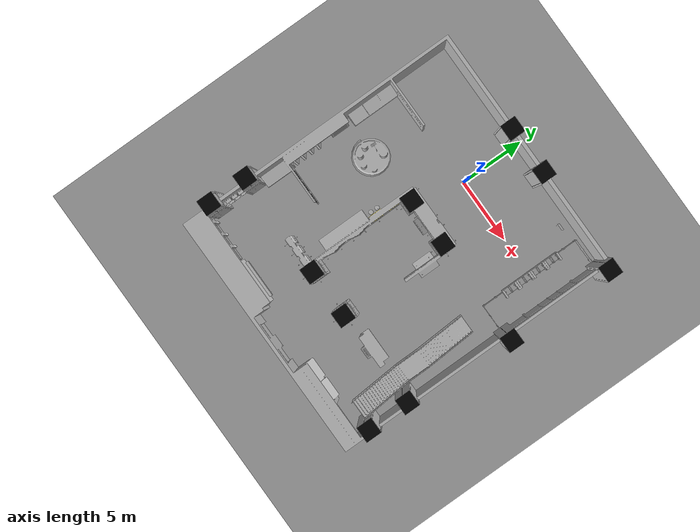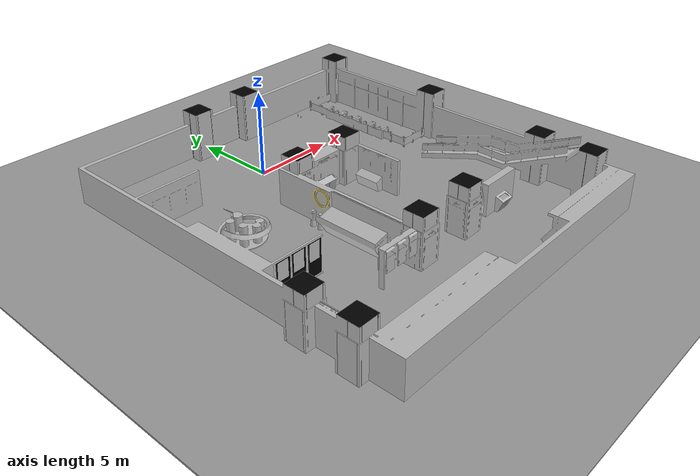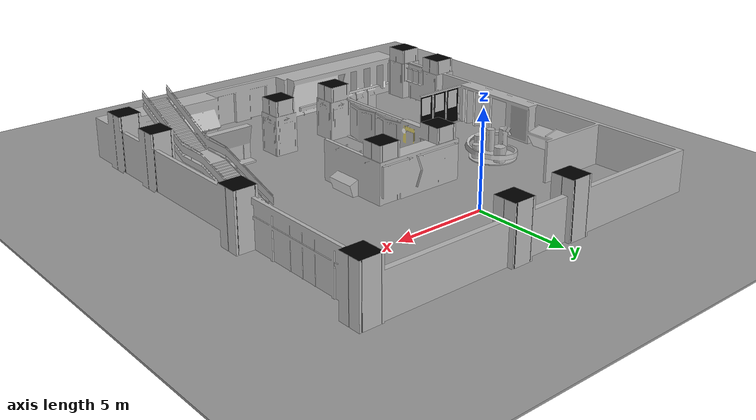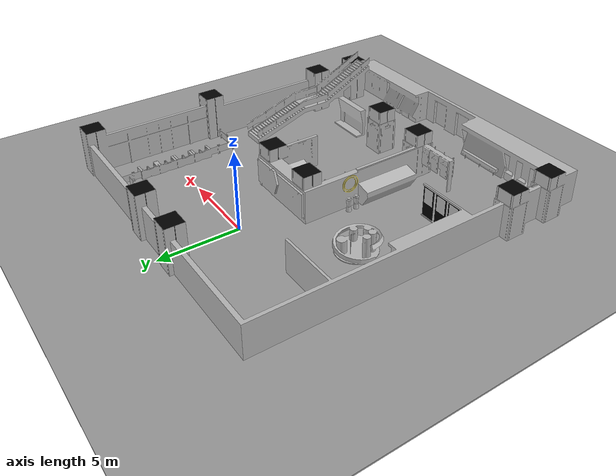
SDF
<sdf version="1.7">
 <world name="default">
  <light name="sun" type="directional">
   <pose>0 0 10 0 -0 0</pose>
   <diffuse>0.8 0.8 0.8 1</diffuse>
   <specular>0.2 0.2 0.2 1</specular>
   <attenuation>
    <range>1000</range>
    <constant>0.9</constant>
    <linear>0.01</linear>
    <quadratic>0.001</quadratic>
   </attenuation>
   <direction>-0.5 0.1 -0.9</direction>
   <spot><inner_angle>0</inner_angle><outer_angle>0</outer_angle><falloff>0</falloff></spot>
  </light>
  <model name="ground_plane">
   <static>1</static>
   <link name="link">
    <collision name="collision">
     <geometry><plane><normal>0 0 1</normal><size>100 100</size></plane></geometry>
     <surface>
      <contact><collide_bitmask>65535</collide_bitmask></contact>
      <friction><ode><mu>100</mu><mu2>50</mu2></ode></friction>
     </surface>
    </collision>
    <visual name="visual">
     <cast_shadows>0</cast_shadows>
     <geometry><plane><normal>0 0 1</normal><size>100 100</size></plane></geometry>
     <material>
      <script><uri>file://media/materials/scripts/gazebo.material</uri><name>Gazebo/Grey</name></script>
     </material>
    </visual>
   </link>
  </model>
  <gravity>0 0 -9.8</gravity>
  <magnetic_field>6e-06 2.3e-05 -4.2e-05</magnetic_field>
  <atmosphere type="adiabatic"/>
  <physics type="ode">
   <max_step_size>0.001</max_step_size>
   <real_time_factor>1</real_time_factor>
   <real_time_update_rate>1000</real_time_update_rate>
  </physics>
  <scene><ambient>0.4 0.4 0.4 1</ambient><background>0.7 0.7 0.7 1</background><shadows>1</shadows></scene>
  <audio><device>default</device></audio>
  <spherical_coordinates>
   <surface_model>EARTH_WGS84</surface_model>
   <latitude_deg>0</latitude_deg>
   <longitude_deg>0</longitude_deg>
   <elevation>0</elevation>
   <heading_deg>0</heading_deg>
  </spherical_coordinates>
  <model name="ground_plane_0">
   <static>1</static>
   <link name="link">
    <collision name="collision">
     <geometry><plane><normal>0 0 1</normal><size>100 100</size></plane></geometry>
     <surface>
      <contact><collide_bitmask>65535</collide_bitmask></contact>
      <friction><ode><mu>100</mu><mu2>50</mu2></ode></friction>
     </surface>
    </collision>
    <visual name="visual">
     <cast_shadows>0</cast_shadows>
     <geometry><plane><normal>0 0 1</normal><size>100 100</size></plane></geometry>
     <material>
      <script><uri>file://media/materials/scripts/gazebo.material</uri><name>Gazebo/Grey</name></script>
     </material>
    </visual>
   </link>
   <pose>7.27087 11.5713 0 0 -0 0</pose>
  </model>
  <model name="iscas_museum">
   <link name="link">
    <inertial><mass>15</mass></inertial>
    <collision name="collision">
     <pose>0 0 0 0 0 -1.57</pose>
     <geometry><mesh><uri>model://iscas_museum/meshes/ISCAS_museum.dae</uri></mesh></geometry>
    </collision>
    <visual name="visual">
     <pose>0 0 0 0 0 -1.57</pose>
     <geometry><mesh><uri>model://iscas_museum/meshes/ISCAS_museum.dae</uri></mesh></geometry>
    </visual>
   </link>
   <static>1</static>
   <pose>0.501039 -6.74145 0 0 -0 0</pose>
  </model>
 </world>
</sdf>
